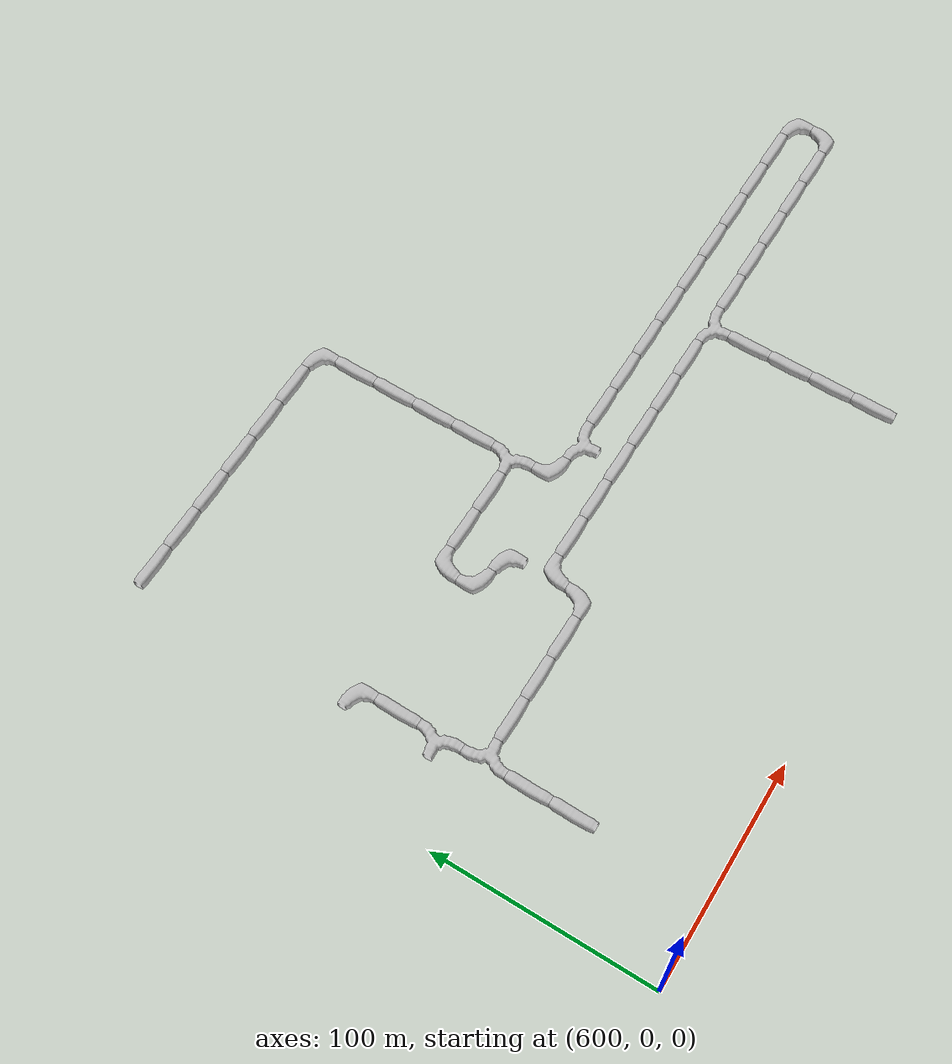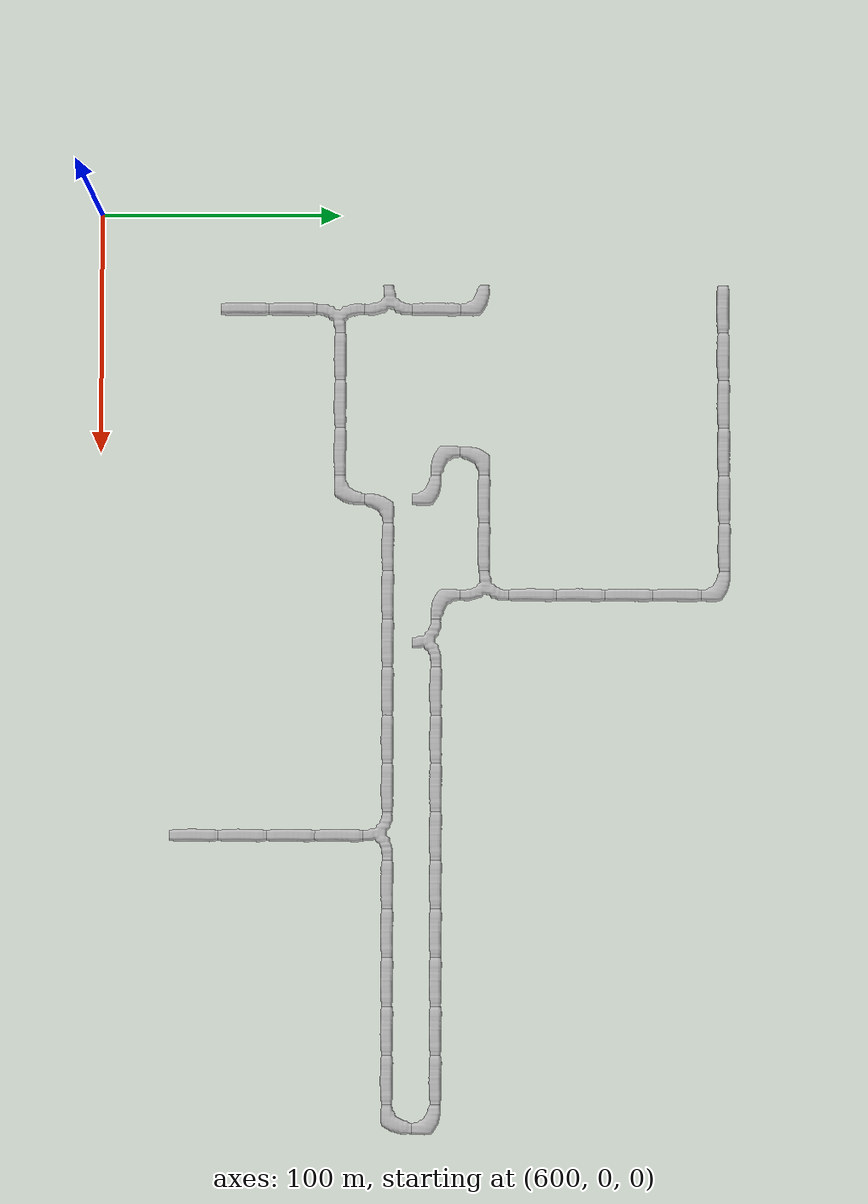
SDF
<sdf version="1.6">
 <world name="cave_32000_32">
  <include>
   <static>true</static>
   <name>cave_32_3</name>
   <pose>640 60 0 0 0 0.0</pose>
   <uri>model://cave_straight_20m</uri>
  </include>
  <include>
   <static>true</static>
   <name>cave_32_4</name>
   <pose>640 80 0 0 0 0.0</pose>
   <uri>model://cave_straight_20m</uri>
  </include>
  <include>
   <static>true</static>
   <name>cave_32_5</name>
   <pose>640 100 0 0 0 -1.5707963267948966</pose>
   <uri>model://cave_3way_20m</uri>
  </include>
  <include>
   <static>true</static>
   <name>cave_33_5</name>
   <pose>660 100 0 0 0 1.5707963267948966</pose>
   <uri>model://cave_straight_20m</uri>
  </include>
  <include>
   <static>true</static>
   <name>cave_34_5</name>
   <pose>680 100 0 0 0 1.5707963267948966</pose>
   <uri>model://cave_straight_20m</uri>
  </include>
  <include>
   <static>true</static>
   <name>cave_35_5</name>
   <pose>700 100 0 0 0 1.5707963267948966</pose>
   <uri>model://cave_straight_20m</uri>
  </include>
  <include>
   <static>true</static>
   <name>cave_36_5</name>
   <pose>720 100 0 0 0 1.5707963267948966</pose>
   <uri>model://cave_L_20m</uri>
  </include>
  <include>
   <static>true</static>
   <name>cave_36_6</name>
   <pose>720 120 0 0 0 -1.5707963267948966</pose>
   <uri>model://cave_L_20m</uri>
  </include>
  <include>
   <static>true</static>
   <name>cave_37_6</name>
   <pose>740 120 0 0 0 1.5707963267948966</pose>
   <uri>model://cave_straight_20m</uri>
  </include>
  <include>
   <static>true</static>
   <name>cave_38_6</name>
   <pose>760 120 0 0 0 1.5707963267948966</pose>
   <uri>model://cave_straight_20m</uri>
  </include>
  <include>
   <static>true</static>
   <name>cave_39_6</name>
   <pose>780 120 0 0 0 1.5707963267948966</pose>
   <uri>model://cave_straight_20m</uri>
  </include>
  <include>
   <static>true</static>
   <name>cave_40_6</name>
   <pose>800 120 0 0 0 1.5707963267948966</pose>
   <uri>model://cave_straight_20m</uri>
  </include>
  <include>
   <static>true</static>
   <name>cave_41_6</name>
   <pose>820 120 0 0 0 1.5707963267948966</pose>
   <uri>model://cave_straight_20m</uri>
  </include>
  <include>
   <static>true</static>
   <name>cave_42_6</name>
   <pose>840 120 0 0 0 1.5707963267948966</pose>
   <uri>model://cave_straight_20m</uri>
  </include>
  <include>
   <static>true</static>
   <name>cave_43_6</name>
   <pose>860 120 0 0 0 3.141592653589793</pose>
   <uri>model://cave_3way_20m</uri>
  </include>
  <include>
   <static>true</static>
   <name>cave_44_6</name>
   <pose>880 120 0 0 0 1.5707963267948966</pose>
   <uri>model://cave_straight_20m</uri>
  </include>
  <include>
   <static>true</static>
   <name>cave_45_6</name>
   <pose>900 120 0 0 0 1.5707963267948966</pose>
   <uri>model://cave_straight_20m</uri>
  </include>
  <include>
   <static>true</static>
   <name>cave_46_6</name>
   <pose>920 120 0 0 0 1.5707963267948966</pose>
   <uri>model://cave_straight_20m</uri>
  </include>
  <include>
   <static>true</static>
   <name>cave_47_6</name>
   <pose>940 120 0 0 0 1.5707963267948966</pose>
   <uri>model://cave_straight_20m</uri>
  </include>
  <include>
   <static>true</static>
   <name>cave_48_6</name>
   <pose>960 120 0 0 0 1.5707963267948966</pose>
   <uri>model://cave_straight_20m</uri>
  </include>
  <include>
   <static>true</static>
   <name>cave_49_6</name>
   <pose>980 120 0 0 0 1.5707963267948966</pose>
   <uri>model://cave_L_20m</uri>
  </include>
  <include>
   <static>true</static>
   <name>cave_49_7</name>
   <pose>980 140 0 0 0 3.141592653589793</pose>
   <uri>model://cave_L_20m</uri>
  </include>
  <include>
   <static>true</static>
   <name>cave_48_7</name>
   <pose>960 140 0 0 0 1.5707963267948966</pose>
   <uri>model://cave_straight_20m</uri>
  </include>
  <include>
   <static>true</static>
   <name>cave_47_7</name>
   <pose>940 140 0 0 0 1.5707963267948966</pose>
   <uri>model://cave_straight_20m</uri>
  </include>
  <include>
   <static>true</static>
   <name>cave_46_7</name>
   <pose>920 140 0 0 0 1.5707963267948966</pose>
   <uri>model://cave_straight_20m</uri>
  </include>
  <include>
   <static>true</static>
   <name>cave_45_7</name>
   <pose>900 140 0 0 0 1.5707963267948966</pose>
   <uri>model://cave_straight_20m</uri>
  </include>
  <include>
   <static>true</static>
   <name>cave_44_7</name>
   <pose>880 140 0 0 0 1.5707963267948966</pose>
   <uri>model://cave_straight_20m</uri>
  </include>
  <include>
   <static>true</static>
   <name>cave_43_7</name>
   <pose>860 140 0 0 0 1.5707963267948966</pose>
   <uri>model://cave_straight_20m</uri>
  </include>
  <include>
   <static>true</static>
   <name>cave_42_7</name>
   <pose>840 140 0 0 0 1.5707963267948966</pose>
   <uri>model://cave_straight_20m</uri>
  </include>
  <include>
   <static>true</static>
   <name>cave_41_7</name>
   <pose>820 140 0 0 0 1.5707963267948966</pose>
   <uri>model://cave_straight_20m</uri>
  </include>
  <include>
   <static>true</static>
   <name>cave_40_7</name>
   <pose>800 140 0 0 0 1.5707963267948966</pose>
   <uri>model://cave_straight_20m</uri>
  </include>
  <include>
   <static>true</static>
   <name>cave_39_7</name>
   <pose>780 140 0 0 0 3.141592653589793</pose>
   <uri>model://cave_3way_20m</uri>
  </include>
  <include>
   <static>true</static>
   <name>cave_38_7</name>
   <pose>760 140 0 0 0 0.0</pose>
   <uri>model://cave_L_20m</uri>
  </include>
  <include>
   <static>true</static>
   <name>cave_38_8</name>
   <pose>760 160 0 0 0 1.5707963267948966</pose>
   <uri>model://cave_3way_20m</uri>
  </include>
  <include>
   <static>true</static>
   <name>cave_37_8</name>
   <pose>740 160 0 0 0 1.5707963267948966</pose>
   <uri>model://cave_straight_20m</uri>
  </include>
  <include>
   <static>true</static>
   <name>cave_36_8</name>
   <pose>720 160 0 0 0 1.5707963267948966</pose>
   <uri>model://cave_straight_20m</uri>
  </include>
  <include>
   <static>true</static>
   <name>cave_35_8</name>
   <pose>700 160 0 0 0 -1.5707963267948966</pose>
   <uri>model://cave_L_20m</uri>
  </include>
  <include>
   <static>true</static>
   <name>cave_35_7</name>
   <pose>700 140 0 0 0 0.0</pose>
   <uri>model://cave_L_20m</uri>
  </include>
  <include>
   <static>true</static>
   <name>cave_36_7</name>
   <pose>720 140 0 0 0 3.141592653589793</pose>
   <uri>model://cave_L_20m</uri>
  </include>
  <include>
   <static>true</static>
   <name>cave_38_9</name>
   <pose>760 180 0 0 0 0.0</pose>
   <uri>model://cave_straight_20m</uri>
  </include>
  <include>
   <static>true</static>
   <name>cave_38_10</name>
   <pose>760 200 0 0 0 0.0</pose>
   <uri>model://cave_straight_20m</uri>
  </include>
  <include>
   <static>true</static>
   <name>cave_38_11</name>
   <pose>760 220 0 0 0 0.0</pose>
   <uri>model://cave_straight_20m</uri>
  </include>
  <include>
   <static>true</static>
   <name>cave_38_12</name>
   <pose>760 240 0 0 0 0.0</pose>
   <uri>model://cave_straight_20m</uri>
  </include>
  <include>
   <static>true</static>
   <name>cave_38_13</name>
   <pose>760 260 0 0 0 3.141592653589793</pose>
   <uri>model://cave_L_20m</uri>
  </include>
  <include>
   <static>true</static>
   <name>cave_37_13</name>
   <pose>740 260 0 0 0 1.5707963267948966</pose>
   <uri>model://cave_straight_20m</uri>
  </include>
  <include>
   <static>true</static>
   <name>cave_36_13</name>
   <pose>720 260 0 0 0 1.5707963267948966</pose>
   <uri>model://cave_straight_20m</uri>
  </include>
  <include>
   <static>true</static>
   <name>cave_35_13</name>
   <pose>700 260 0 0 0 1.5707963267948966</pose>
   <uri>model://cave_straight_20m</uri>
  </include>
  <include>
   <static>true</static>
   <name>cave_34_13</name>
   <pose>680 260 0 0 0 1.5707963267948966</pose>
   <uri>model://cave_straight_20m</uri>
  </include>
  <include>
   <static>true</static>
   <name>cave_33_13</name>
   <pose>660 260 0 0 0 1.5707963267948966</pose>
   <uri>model://cave_straight_20m</uri>
  </include>
  <include>
   <static>true</static>
   <name>cave_32_13</name>
   <pose>640 260 0 0 0 1.5707963267948966</pose>
   <uri>model://cave_straight_20m</uri>
  </include>
  <include>
   <static>true</static>
   <name>cave_43_5</name>
   <pose>860 100 0 0 0 0.0</pose>
   <uri>model://cave_straight_20m</uri>
  </include>
  <include>
   <static>true</static>
   <name>cave_43_4</name>
   <pose>860 80 0 0 0 0.0</pose>
   <uri>model://cave_straight_20m</uri>
  </include>
  <include>
   <static>true</static>
   <name>cave_43_3</name>
   <pose>860 60 0 0 0 0.0</pose>
   <uri>model://cave_straight_20m</uri>
  </include>
  <include>
   <static>true</static>
   <name>cave_43_2</name>
   <pose>860 40 0 0 0 0.0</pose>
   <uri>model://cave_straight_20m</uri>
  </include>
  <include>
   <static>true</static>
   <name>cave_32_6</name>
   <pose>640 120 0 0 0 1.5707963267948966</pose>
   <uri>model://cave_3way_20m</uri>
  </include>
  <include>
   <static>true</static>
   <name>cave_32_7</name>
   <pose>640 140 0 0 0 0.0</pose>
   <uri>model://cave_straight_20m</uri>
  </include>
  <include>
   <static>true</static>
   <name>cave_32_8</name>
   <pose>640 160 0 0 0 3.141592653589793</pose>
   <uri>model://cave_L_20m</uri>
  </include>
 </world>
</sdf>
